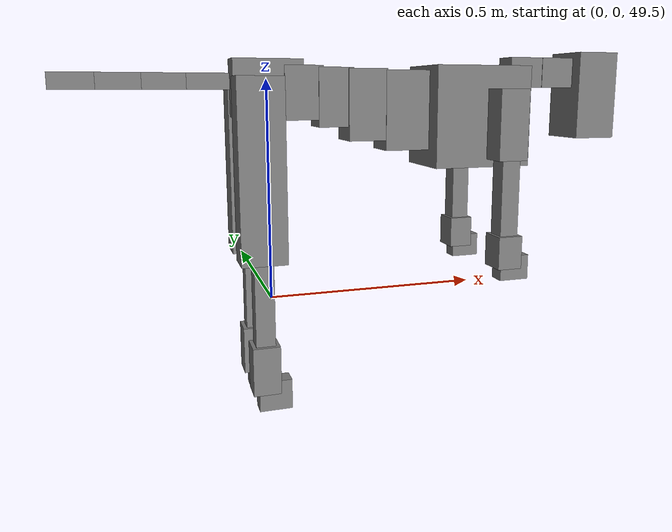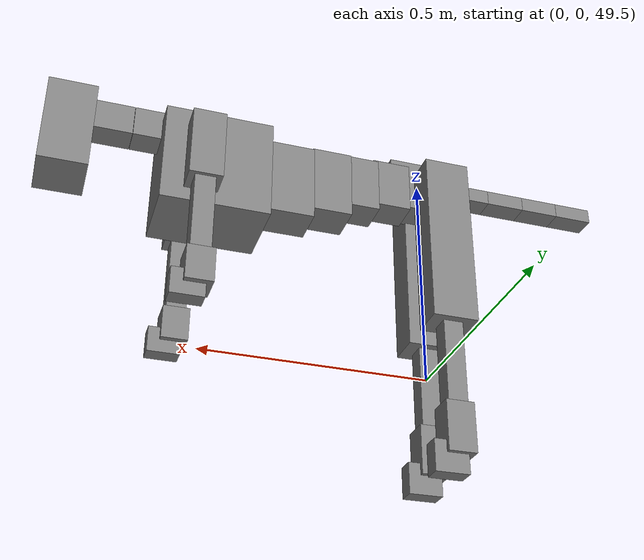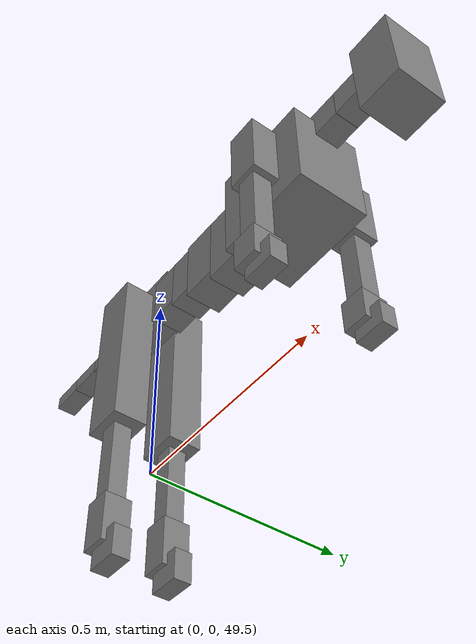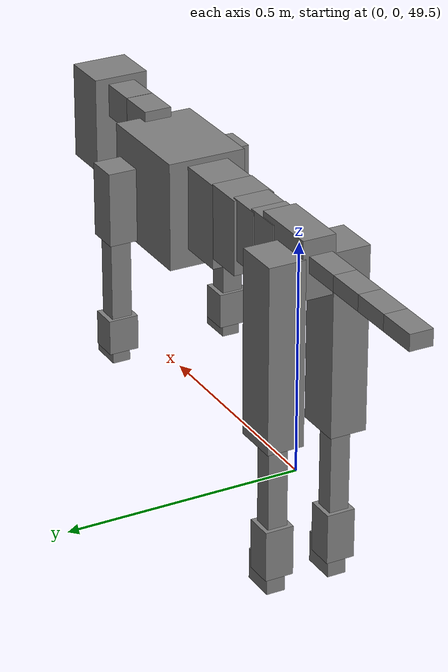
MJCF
<mujoco model="dog">

    <default>
        <joint armature="0.02" stiffness="1" damping="0.2" limited="true"/>
        <geom condim="3" friction="1 0.05 0.05" margin="0.01"/>
        <motor ctrllimited="true" ctrlrange="-1.0 1.0" forcelimited="true" gear="50"/>
    </default>

    <compiler inertiafromgeom="true" angle="radian"/>

    <option timestep="0.016" iterations="50" tolerance="1e-10" solver="Newton" jacobian="dense" cone="pyramidal"/>

    <size nconmax="20000" njmax="60000" nstack="5000000"/>
    <visual>
        <map force="0.1" zfar="30"/>
        <rgba haze="0.15 0.25 0.35 1"/>
        <quality shadowsize="2048"/>
        <global offwidth="800" offheight="800"/>
    </visual>

    <asset>
        <texture type="skybox" builtin="gradient" rgb1="0.3 0.5 0.7" rgb2="0 0 0" width="512" height="512"/>
        <texture name="texplane" type="2d" builtin="checker" rgb1=".2 .3 .4" rgb2=".1 0.15 0.2" width="512" height="512"
                 mark="cross" markrgb=".8 .8 .8"/>
        <texture name="texgeom" type="cube" builtin="flat" mark="cross" width="127" height="1278" rgb1="0.8 0.6 0.4"
                 rgb2="0.8 0.6 0.4" markrgb="1 1 1" random="0.01"/>

        <material name="matplane" reflectance="0.3" texture="texplane" texrepeat="1 1" texuniform="true"/>
        <material name="matgeom" texture="texgeom" texuniform="true" rgba="0.8 0.6 .4 1"/>
    </asset>

    <worldbody>
        <geom name="floor" pos="0 0 0" size="0 0 .25" type="plane" material="matplane" condim="3"/>

        <light directional="false" diffuse=".2 .2 .2" specular="0 0 0" pos="0 0 5" dir="0 0 -1" castshadow="false"/>
        <light mode="targetbodycom" target="torso" directional="false" diffuse=".8 .8 .8" specular="0.3 0.3 0.3"
               pos="0 0 4.0" dir="0 0 -1"/>

        <body name="root" pos="0 0 50">
            <freejoint name="root_1"/>
            <geom type="box" pos="0 0 -0.02" size="0.0774  0.0358  0.063" density="2030"/>

            <body name="spine1" pos="0.054 0 0">
                <joint name="spine1_y" axis="0 1 0" range="0 0.7" limited="true"/>
                <geom type="box" pos="0.02375 0 -0.03" size="0.04375  0.0375  0.05985" density="2030"/>

                <body name="spine2" pos="0.0612 0 0">
                    <joint name="spine2_y" axis="0 1 0" range="-0.15 0.15" limited="true"/>
                    <geom type="box" pos="0.03555  0  -0.04" size="0.04055  0.039  0.06615" density="2030"/>

                    <body name="spine3" pos="0.0730 0 0">
                        <joint name="spine3_y" axis="0 1 0" range="-0.15 0.15" limited="true"/>
                        <geom type="box" pos="0.03555  0  -0.057" size="0.04555  0.0445  0.081" density="2030"/>

                        <body name="spine4" pos="0.0780 0 0">
                            <joint name="spine4_y" axis="0 1 0" range="-0.15 0.15" limited="true"/>
                            <geom type="box" pos="0.05265  0  -0.07" size="0.05265  0.045  0.09135" density="2030"/>

                            <body name="torso" pos="0.1082 0 0">
                                <joint name="torso_y" axis="0 1 0" range="-0.15 0.15" limited="true"/>
                                <geom type="box" pos="0.11925  0  -0.085" size="0.11925  0.085  0.11745"
                                      density="2030"/>

                                <body name="neck1" pos="0.2160  0   0.0180">
                                    <joint name="neck1_y" axis="0 1 0" range="-1.2  -1" limited="true"/>
                                    <geom type="box" pos="0.0423  0  0" size="0.0423  0.03  0.036" density="2325"/>

                                    <body name="neck2" pos="0.0853  0  0">
                                        <joint name="neck2_y" axis="0 1 0" range="0.1  0" limited="true"/>
                                        <geom type="box" pos="0.0423  0  0" size="0.0423  0.03  0.036" density="2325"/>

                                        <body name="head" pos="0.0853  0  0">
                                            <joint name="head_y" axis="0 1 0" range="-0.3  -0.2" limited="true"/>
                                            <geom type="box" pos="0.0531  0  -0.055" size="0.0531  0.06  0.1044"
                                                  density="4030"/>

                                        </body>
                                    </body>
                                </body>

                                <body name="front_shoulder" pos="0.156  0   -0.0480">
                                    <joint name="front_shoulder_y" axis="0 1 0" range="-1 1.5" limited="true"/>
                                    <geom type="box" pos="0 0.13 -0.0537" size="0.0358  0.0306  0.0804" density="1158"/>
                                    <geom type="box" pos="0 -0.13 -0.0537" size="0.0358  0.0306  0.0804"
                                          density="1158"/>

                                    <body name="front_elbow" pos="0  0  -0.1075">
                                        <joint name="front_elbow_y" axis="0 1 0" range="-2 0" limited="true"/>
                                        <geom type="box" pos="0 0.13 -0.1073" size="0.0219  0.0224  0.1073"
                                              density="1081"/>
                                        <geom type="box" pos="0 -0.13 -0.1073" size="0.0219  0.0224  0.1073"
                                              density="1081"/>

                                        <body name="front_wrist" pos="0  0  -0.2146">
                                            <joint name="front_wrist_y" axis="0 1 0" range="-0.2 0" limited="true"/>
                                            <geom type="box" pos="0 0.13 -0.0252" size="0.0294  0.0327  0.0383"
                                                  density="1664"/>
                                            <geom type="box" pos="0 -0.13 -0.0252" size="0.0294  0.0327  0.0383"
                                                  density="1664"/>

                                            <body name="front_finger_end" pos="0  0  -0.0503">
                                                <joint name="front_finger_y" axis="0 1 0" range="-0.4 1"
                                                       limited="true"/>
                                                <geom type="box" pos="0.0194  0.13  -0.0140"
                                                      size="0.0356  0.0194  0.0290" density="1515"/>
                                                <geom type="box" pos="0.0194  -0.13  -0.0140"
                                                      size="0.0356  0.0194  0.0290" density="1515"/>

                                            </body>

                                        </body>
                                    </body>
                                </body>

                            </body>
                        </body>
                    </body>
                </body>
            </body>

            <body name="back_hip" pos="-0.03 0 -0.018">
                <joint name="back_hip_y" axis="0 1 0" range="-1.5 0.3" limited="true"/>
                <geom type="box" pos="0 0.07 -0.1781" size="0.0508  0.0398  0.2009" density="1154"/>
                <geom type="box" pos="0 -0.07 -0.1781" size="0.0508  0.0398  0.2009" density="1154"/>

                <body name="back_knee" pos="0  0  -0.3563">
                    <joint name="back_knee_y" axis="0 1 0" range="0 2.8" limited="true"/>
                    <geom type="box" pos="0 0.07 -0.1109" size="0.0218  0.0215  0.1264" density="1227"/>
                    <geom type="box" pos="0 -0.07 -0.1109" size="0.0218  0.0215  0.1264" density="1227"/>

                    <body name="back_ankle" pos="0  0  -0.2217">
                        <joint name="back_ankle_y" axis="0 1 0" range="-2.2 0" limited="true"/>
                        <geom type="box" pos="0 0.07 -0.0439" size="0.0310  0.0310  0.0552" density="1284"/>
                        <geom type="box" pos="0 -0.07 -0.0439" size="0.0310  0.0310  0.0552" density="1284"/>

                        <body name="back_toe_end" pos="0  0  -0.0879">
                            <joint name="back_toe_y" axis="0 1 0" range="-0.4 1" limited="true"/>
                            <geom type="box" pos="0.0202  0.07  -0.0194" size="0.0371  0.0202  0.0344" density="1515"/>
                            <geom type="box" pos="0.0202  -0.07  -0.0194" size="0.0371  0.0202  0.0344" density="1515"/>

                        </body>
                    </body>
                </body>
            </body>

            <body name="tail1" pos="-0.074 0 -0.006">
                <joint name="tail1_y" axis="0 1 0" range="-0.2 0.2" limited="true"/>
                <geom type="box" pos="-0.0536  0  0" size="0.045  0.025  0.0175" density="1587"/>

                <body name="tail2" pos="-0.09 0 0">
                    <joint name="tail2_y" axis="0 1 0" range="-0.2 0.2" limited="true"/>
                    <geom type="box" pos="-0.0536  0  0" size="0.045  0.025  0.0175" density="1587"/>

                    <body name="tail3" pos="-0.09 0 0">
                        <joint name="tail3_y" axis="0 1 0" range="-0.2 0.2" limited="true"/>
                        <geom type="box" pos="-0.0536  0  0" size="0.045  0.025  0.0175" density="1587"/>

                        <body name="tail4" pos="-0.09 0 0">
                            <joint name="tail4_y" axis="0 1 0" range="-0.2 0.2" limited="true"/>
                            <geom type="box" pos="-0.0536  0  0" size="0.045  0.025  0.0175" density="1587"/>

                        </body>
                    </body>
                </body>
            </body>
        </body>
    </worldbody>

    <actuator>
        <motor joint="spine1_y" forcerange="-150 150     "/>
        <motor joint="spine2_y" forcerange="-150 150     "/>
        <motor joint="spine3_y" forcerange="-150 150     "/>
        <motor joint="spine4_y" forcerange="-150 150     "/>
        <motor joint="torso_y" forcerange="-150 150     "/>
        <motor joint="neck1_y" forcerange="-100 100       "/>
        <motor joint="neck2_y" forcerange="-100 100       "/>
        <motor joint="head_y" forcerange="-150 150       "/>
        <motor joint="front_shoulder_y" forcerange="-160.58 143.24"/>
        <motor joint="front_elbow_y" forcerange="-143.96 118.70"/>
        <motor joint="front_wrist_y" forcerange="-134.11 127.64"/>
        <motor joint="front_finger_y" forcerange="-39.15 24.49"/>
        <motor joint="back_hip_y" forcerange="-356.33 374.54"/>
        <motor joint="back_knee_y" forcerange="-297.81 214.42"/>
        <motor joint="back_angle_y" forcerange="-181.33 214.42"/>
        <motor joint="back_toe_y" forcerange="-23.18 58.71"/>
        <motor joint="tail1_y" forcerange="-50 50     "/>
        <motor joint="tail2_y" forcerange="-50 50     "/>
        <motor joint="tail3_y" forcerange="-50 50     "/>
        <motor joint="tail4_y" forcerange="-50 50     "/>
    </actuator>
</mujoco>
